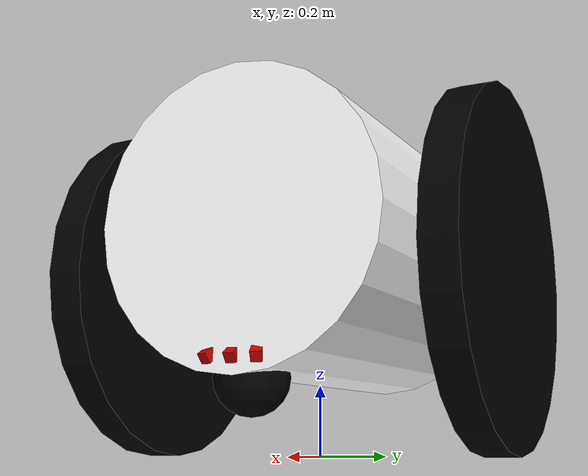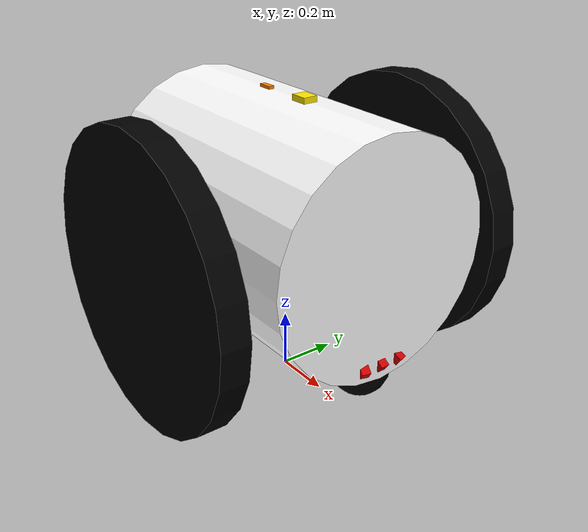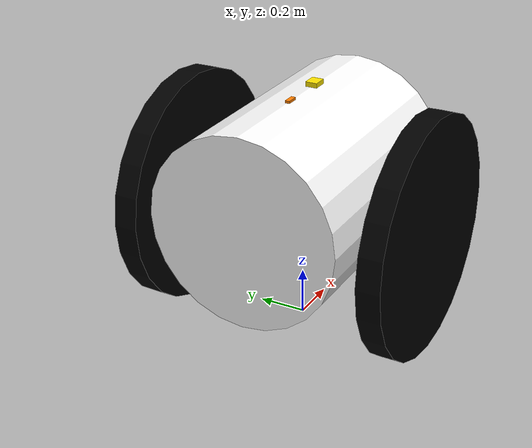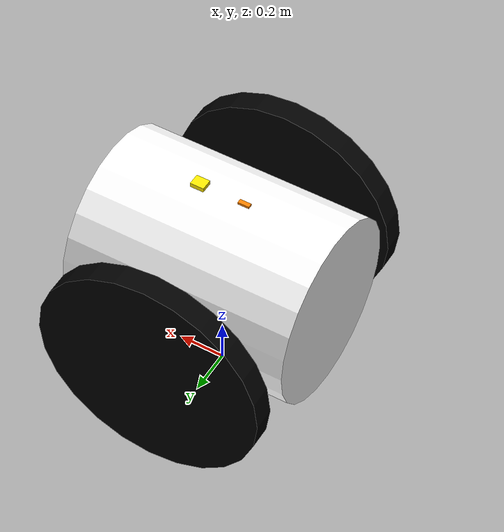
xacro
<?xml version="1.0"?>
<robot name="my_f" xmlns:xacro="http://www.ros.org/wiki/xacro">
  <xacro:property name="width" value="0.4" />
  <xacro:property name="length" value="1.0" />
  <xacro:property name="wheel_length" value="0.1" />
  <xacro:property name="body_high" value="0.1" />
  <xacro:property name="wheelrad" value="${body_high+width}" />

  <material name="blue">
    <color rgba="0 0 0.8 1"/>
  </material>

  <material name="white">
    <color rgba="1 1 1 1"/>
  </material>

  <material name="black">
    <color rgba="0 0 0 1"/>
  </material>

  <material name="red">
    <color rgba="0.8 0 0 1"/>
  </material>

  <material name="orange">
    <color rgba="1 0.5 0 1"/>
  </material>

  <material name="yellow">
    <color rgba="1 0.9 0 1"/>
  </material>

  <xacro:macro name="cylinder_inertial_z" params="mass r l">
    <inertial>
      <mass value="${mass}"/>
      <inertia ixx="${mass*(3*r*r + l*l)/12}" ixy="0" ixz="0"
               iyy="${mass*(3*r*r + l*l)/12}" iyz="0"
               izz="${mass*r*r/2}"/>
    </inertial>
  </xacro:macro>

  <xacro:macro name="cylinder_inertial_x" params="mass r l">
    <inertial>
      <mass value="${mass}"/>
      <inertia ixx="${mass*r*r/2}" ixy="0" ixz="0"
               iyy="${mass*(3*r*r + l*l)/12}" iyz="0"
               izz="${mass*(3*r*r + l*l)/12}"/>
    </inertial>
  </xacro:macro>

  <xacro:macro name="wheel" params="prefix reflect">
    <joint name="${prefix}_motor_joint" type="fixed">
      <parent link="base_link"/>
      <child link="${prefix}_motor_link"/>
      <origin xyz="0 ${reflect*(body_high+width)} 0" rpy="0 0 0"/>
    </joint>

    <link name="${prefix}_motor_link">
      <visual>
        <geometry>
          <cylinder length="0.05" radius="0.08"/>
        </geometry>
        <origin xyz="0 0 0" rpy="1.570796 0 0"/>
        <material name="blue"/>
      </visual>
      <collision>
        <geometry>
          <cylinder length="0.05" radius="0.08"/>
        </geometry>
        <origin xyz="0 0 0" rpy="1.570796 0 0"/>
      </collision>
      <xacro:cylinder_inertial_x mass="0.3" r="0.08" l="0.05"/>
    </link>

    <joint name="${prefix}_wheel_joint" type="continuous">
      <axis xyz="0 0 ${-reflect}"/>
      <parent link="${prefix}_motor_link"/>
      <child link="${prefix}_wheel"/>
      <origin xyz="0 ${reflect*0.03} 0" rpy="${reflect*1.570796} 0 0"/>
    </joint>
  </xacro:macro>

  <link name="base_footprint"/>

  <joint name="base_footprint_to_base_link_joint" type="fixed">
    <parent link="base_footprint"/>
    <child link="base_link"/>
    <origin xyz="0 0 ${wheelrad}" rpy="0 0 0"/>
  </joint>

  <link name="base_link">
    <visual>
      <geometry>
        <cylinder length="${length}" radius="${width}"/>
      </geometry>
      <origin xyz="0 0 ${body_high}" rpy="0 1.570796 0"/>
      <material name="white"/>
    </visual>
    <collision>
      <geometry>
        <cylinder length="${length}" radius="${width}"/>
      </geometry>
      <origin xyz="0 0 ${body_high}" rpy="0 1.570796 0"/>
    </collision>
    <xacro:cylinder_inertial_z mass="10" r="${width}" l="${length}"/>
  </link>

  <link name="right_wheel">
    <visual>
      <geometry>
        <cylinder length="${wheel_length}" radius="${wheelrad}"/>
      </geometry>
      <origin xyz="0 0 0" rpy="0 0 0"/>
      <material name="black"/>
    </visual>
    <collision>
      <geometry>
        <cylinder length="${wheel_length}" radius="${wheelrad}"/>
      </geometry>
      <origin xyz="0 0 0" rpy="0 0 0"/>
    </collision>
    <xacro:cylinder_inertial_x mass="1" r="${wheelrad}" l="${wheel_length}"/>
  </link>

  <link name="left_wheel">
    <visual>
      <geometry>
        <cylinder length="${wheel_length}" radius="${wheelrad}"/>
      </geometry>
      <origin xyz="0 0 0" rpy="0 0 0"/>
      <material name="black"/>
    </visual>
    <collision>
      <geometry>
        <cylinder length="${wheel_length}" radius="${wheelrad}"/>
      </geometry>
      <origin xyz="0 0 0" rpy="0 0 0"/>
    </collision>
    <xacro:cylinder_inertial_x mass="1" r="${wheelrad}" l="${wheel_length}"/>
  </link>

  <xacro:wheel prefix="right" reflect="1"/>
  <xacro:wheel prefix="left" reflect="-1"/>

  <link name="caster_wheel">
    <visual>
      <geometry>
        <sphere radius="0.1"/>
      </geometry>
      <material name="black"/>
    </visual>
    <collision>
      <geometry>
        <sphere radius="0.1"/>
      </geometry>
    </collision>
    <inertial>
      <mass value="0.5"/>
      <inertia ixx="0.002" ixy="0" ixz="0" iyy="0.002" iyz="0" izz="0.002"/>
    </inertial>
  </link>

  <joint name="caster_wheel_joint" type="fixed">
    <parent link="base_link"/>
    <child link="caster_wheel"/>
    <origin xyz="0.4 0 ${-width + body_high}" rpy="0 0 0"/>
  </joint>

  <!-- 아두이노 마이크로보드: 원통 몸체 중앙, 윗면에 고정 -->
  <link name="arduino_link">
    <visual>
      <geometry>
        <box size="0.05 0.02 0.01"/>
      </geometry>
      <material name="orange"/>
    </visual>
    <collision>
      <geometry>
        <box size="0.05 0.02 0.01"/>
      </geometry>
    </collision>
    <inertial>
      <mass value="0.03"/>
      <inertia ixx="0.00001" ixy="0" ixz="0" iyy="0.00001" iyz="0" izz="0.00001"/>
    </inertial>
  </link>

  <joint name="arduino_joint" type="fixed">
    <parent link="base_link"/>
    <child link="arduino_link"/>
    <origin xyz="-0.1 0 ${width + body_high + 0.005}" rpy="0 0 0"/>
  </joint>

  <!-- 모터 드라이버: 원통 몸체 중앙, 아두이노 옆 윗면에 고정 -->
  <link name="motor_driver_link">
    <visual>
      <geometry>
        <box size="0.06 0.05 0.02"/>
      </geometry>
      <material name="yellow"/>
    </visual>
    <collision>
      <geometry>
        <box size="0.06 0.05 0.02"/>
      </geometry>
    </collision>
    <inertial>
      <mass value="0.08"/>
      <inertia ixx="0.00003" ixy="0" ixz="0" iyy="0.00003" iyz="0" izz="0.00003"/>
    </inertial>
  </link>

  <joint name="motor_driver_joint" type="fixed">
    <parent link="base_link"/>
    <child link="motor_driver_link"/>
    <origin xyz="0.1 0 ${width + body_high + 0.01}" rpy="0 0 0"/>
  </joint>

  <xacro:macro name="ir_sensor" params="prefix xyz rot">
    <link name="ir_${prefix}_link">
      <visual>
        <geometry>
          <box size="0.03 0.03 0.03"/>
        </geometry>
        <material name="red"/>
      </visual>
      <inertial>
        <mass value="0.01"/>
        <inertia ixx="0.0001" ixy="0" ixz="0" iyy="0.0001" iyz="0" izz="0.0001"/>
      </inertial>
    </link>

    <joint name="ir_${prefix}_joint" type="fixed">
      <parent link="base_link"/>
      <child link="ir_${prefix}_link"/>
      <origin xyz="${xyz}" rpy="0 0.6 ${rot}"/>
    </joint>

    <gazebo reference="ir_${prefix}_link">
      <sensor type="ray" name="ir_${prefix}_sensor">
        <pose>0 0 0 0 0 0</pose>
        <visualize>true</visualize>
        <update_rate>30</update_rate>
        <ray>
          <scan>
            <horizontal>
              <samples>1</samples>
              <resolution>1</resolution>
              <min_angle>0</min_angle>
              <max_angle>0</max_angle>
            </horizontal>
          </scan>
          <range>
            <min>0.01</min>
            <max>1.0</max>
            <resolution>0.001</resolution>
          </range>
        </ray>
        <plugin name="ir_${prefix}_plugin" filename="libgazebo_ros_ray_sensor.so">
          <ros>
            <remapping>~/out:=/ir_sensor/${prefix}</remapping>
          </ros>
          <output_type>sensor_msgs/LaserScan</output_type>
          <frame_name>ir_${prefix}_link</frame_name>
        </plugin>
      </sensor>
    </gazebo>
  </xacro:macro>

  <xacro:ir_sensor prefix="left"   xyz="0.50  0.07 ${-width + body_high + 0.05}" rot="0.3"/>
  <xacro:ir_sensor prefix="center" xyz="0.50  0.00 ${-width + body_high + 0.05}" rot="0"/>
  <xacro:ir_sensor prefix="right"  xyz="0.50 -0.07 ${-width + body_high + 0.05}" rot="-0.3"/>

  <gazebo reference="caster_wheel">
    <mu1>0.001</mu1>
    <mu2>0.001</mu2>
  </gazebo>

  <gazebo reference="arduino_link">
    <material>Gazebo/Orange</material>
  </gazebo>

  <gazebo reference="motor_driver_link">
    <material>Gazebo/Yellow</material>
  </gazebo>

  <gazebo>
    <plugin name="differential_drive_controller" filename="libgazebo_ros_diff_drive.so">
      <update_rate>30</update_rate>

      <left_joint>left_wheel_joint</left_joint>
      <right_joint>right_wheel_joint</right_joint>

      <publish_wheel_joint_state>false</publish_wheel_joint_state>

      <wheel_separation>${(body_high + width) * 2}</wheel_separation>
      <wheel_diameter>${wheelrad * 2}</wheel_diameter>
      <max_wheel_torque>20</max_wheel_torque>
      <max_wheel_acceleration>1.0</max_wheel_acceleration>

      <command_topic>cmd_vel</command_topic>
      <odometry_topic>odom</odometry_topic>
      <odometry_frame>odom</odometry_frame>
      <robot_base_frame>base_footprint</robot_base_frame>

      <publish_odom>true</publish_odom>
      <publish_odom_tf>true</publish_odom_tf>
      <publish_wheel_tf>true</publish_wheel_tf>
    </plugin>
  </gazebo>

  <gazebo>
    <plugin name="gazebo_ros_joint_state_publisher" filename="libgazebo_ros_joint_state_publisher.so">
      <ros>
        <remapping>~/out:=joint_states</remapping>
      </ros>
      <update_rate>30</update_rate>
      <joint_name>left_wheel_joint</joint_name>
      <joint_name>right_wheel_joint</joint_name>
    </plugin>
  </gazebo>

</robot>
